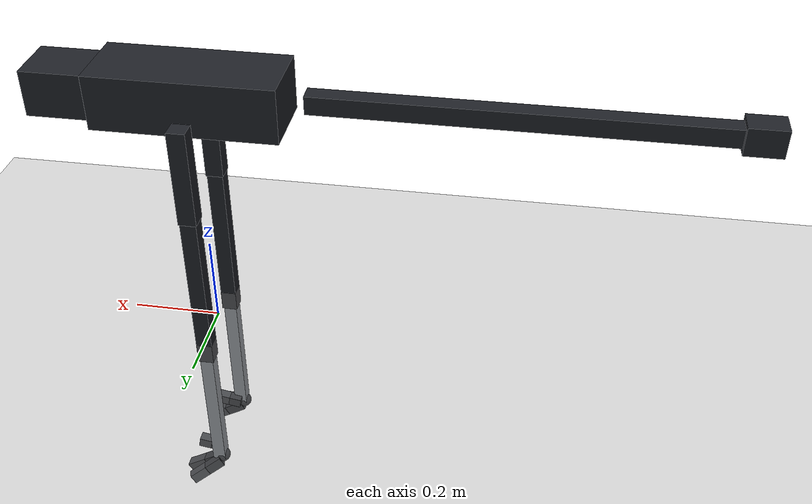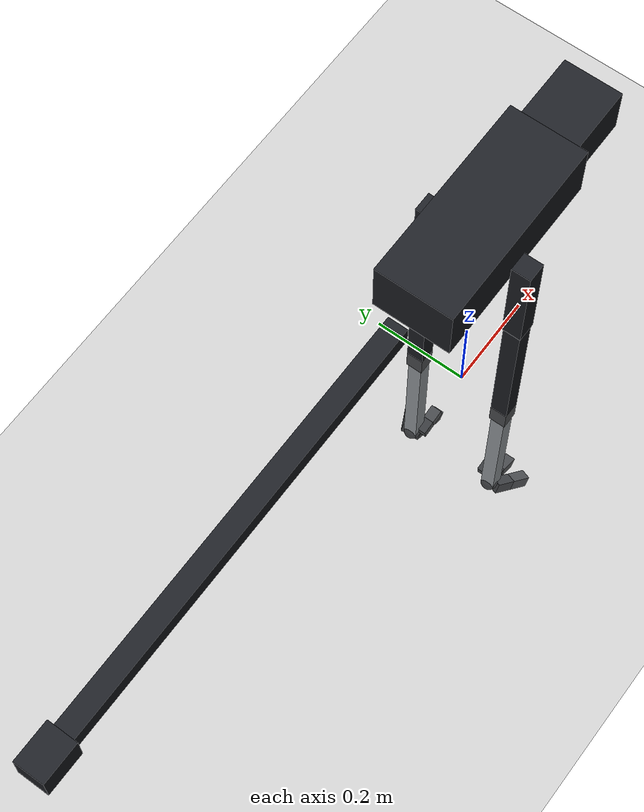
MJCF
<!-- Generated by sim/build_model.py from URDF sha256:26ca1b92b0143d19. Do not edit. -->
<mujoco model="raptor">
  <compiler angle="radian"/>

  <option timestep="0.001" integrator="implicitfast" cone="elliptic"/>

  <worldbody>
    <geom name="floor" size="0 0 0.05" type="plane"/>
    <body name="base_root">
      <joint name="floating_base" type="free"/>
      <body name="base_link" pos="0 0 0.58">
        <inertial pos="0.01635 0 -0.00067" quat="0 0.707107 0 0.707107" mass="4.19" diaginertia="0.0694541 0.0684684 0.0156123"/>
        <geom size="0.2 0.08 0.06" type="box" conaffinity="0" rgba="0.12 0.13 0.15 1"/>
        <geom size="0.07 0.06 0.05" pos="0.27 0 0" type="box" conaffinity="0" rgba="0.12 0.13 0.15 1"/>
        <site name="imu"/>
        <body name="left_hip_roll_link" pos="0 0.1 -0.03">
          <inertial pos="0 0 0" mass="2.26" diaginertia="0.0032544 0.0032544 0.0032544"/>
          <joint name="left_hip_roll_joint" range="-0.5 0.5" actuatorfrcrange="-36 36" axis="1 0 0"/>
          <body name="left_thigh_link">
            <inertial pos="0 0 -0.11" mass="0.282" diaginertia="0.0011656 0.0011656 5.64e-05"/>
            <joint name="left_hip_pitch_joint" range="-1.6 0.9" actuatorfrcrange="-36 36" axis="0 1 0"/>
            <geom size="0.02 0.02 0.11" pos="0 0 -0.11" type="box" conaffinity="0" rgba="0.12 0.13 0.15 1"/>
            <body name="left_shin_link" pos="0 0 -0.22">
              <inertial pos="0 0 -0.19" mass="0.228" diaginertia="0.0027664 0.0027664 4.56e-05"/>
              <joint name="left_knee_pitch_joint" range="0.2 2.6" actuatorfrcrange="-36 36" axis="0 1 0"/>
              <geom size="0.018 0.018 0.19" pos="0 0 -0.19" type="box" conaffinity="0" rgba="0.12 0.13 0.15 1"/>
              <body name="left_metatarsus_link" pos="0 0 -0.38">
                <inertial pos="0 0 -0.16" mass="0.192" diaginertia="0.0016576 0.0016576 3.84e-05"/>
                <joint name="left_ankle_pitch_joint" stiffness="77" range="-2.5 0.2" actuatorfrcrange="-36 36" springref="-1.79828" axis="0 1 0"/>
                <geom size="0.015 0.015 0.16" pos="0 0 -0.16" type="box" conaffinity="0" rgba="0.55 0.58 0.61 1"/>
                <body name="left_foot_link" pos="0 0 -0.32" quat="0.965471 0 0.26051 0">
                  <inertial pos="0 0 0" mass="0.04" diaginertia="2e-05 2e-05 2e-05"/>
                  <joint name="left_ankle_roll_joint" range="-0.5 0.5" actuatorfrcrange="-17 17" armature="0.01" axis="1 0 0"/>
                  <geom size="0.018" pos="-0.005 0 -0.002" conaffinity="0" priority="1" friction="0.8" rgba="0.12 0.13 0.15 1"/>
                  <body name="left_toe_2_proximal_link" pos="0 -0.006 -0.008">
                    <inertial pos="0.025 0 0" quat="0.5 0.5 0.5 0.5" mass="0.01" diaginertia="2.08333e-06 2.08333e-06 5e-07"/>
                    <joint name="left_toe_2_proximal_joint" stiffness="30" range="-0.6 0.9" actuatorfrcrange="-5 5" armature="0.0001" damping="0.05" frictionloss="0.005" axis="0 1 0"/>
                    <geom size="0.025 0.012 0.012" pos="0.025 0 0" type="box" conaffinity="0" priority="1" friction="0.8" rgba="0.12 0.13 0.15 1"/>
                    <body name="left_toe_2_distal_link" pos="0.05 0 0">
                      <inertial pos="0.025 0 0" quat="0.5 0.5 0.5 0.5" mass="0.01" diaginertia="2.08333e-06 2.08333e-06 5e-07"/>
                      <joint name="left_toe_2_distal_joint" stiffness="20" range="-0.6 0.9" actuatorfrcrange="-5 5" armature="0.0001" damping="0.05" frictionloss="0.005" axis="0 1 0"/>
                      <geom size="0.025 0.012 0.012" pos="0.025 0 0" type="box" conaffinity="0" priority="1" friction="1.2" rgba="0.2 0.21 0.23 1"/>
                    </body>
                  </body>
                  <body name="left_toe_1_proximal_link" pos="0 0.012 -0.008" quat="0.978148 0 0 0.207912">
                    <inertial pos="0.02125 0 0" quat="0.5 0.5 0.5 0.5" mass="0.01" diaginertia="1.50521e-06 1.50521e-06 5e-07"/>
                    <joint name="left_toe_1_proximal_joint" stiffness="20" range="-0.6 0.9" actuatorfrcrange="-5 5" armature="0.0001" damping="0.05" frictionloss="0.005" axis="0 1 0"/>
                    <geom size="0.02125 0.012 0.012" pos="0.02125 0 0" type="box" conaffinity="0" priority="1" friction="0.8" rgba="0.12 0.13 0.15 1"/>
                    <body name="left_toe_1_distal_link" pos="0.0425 0 0">
                      <inertial pos="0.02125 0 0" quat="0.5 0.5 0.5 0.5" mass="0.01" diaginertia="1.50521e-06 1.50521e-06 5e-07"/>
                      <joint name="left_toe_1_distal_joint" stiffness="14" range="-0.6 0.9" actuatorfrcrange="-5 5" armature="0.0001" damping="0.05" frictionloss="0.005" axis="0 1 0"/>
                      <geom size="0.02125 0.012 0.012" pos="0.02125 0 0" type="box" conaffinity="0" priority="1" friction="0.8" rgba="0.2 0.21 0.23 1"/>
                    </body>
                  </body>
                  <body name="left_toe_3_proximal_link" pos="-0.01 -0.02 0.01" quat="0.939373 0 -0.342898 0">
                    <inertial pos="0.015 0 0" quat="0.5 0.5 0.5 0.5" mass="0.01" diaginertia="7.5e-07 7.5e-07 5e-07"/>
                    <joint name="left_toe_3_proximal_joint" stiffness="15" range="-0.3 0.3" actuatorfrcrange="-5 5" armature="0.0001" damping="0.05" frictionloss="0.005" axis="0 1 0"/>
                    <geom size="0.015 0.012 0.012" pos="0.015 0 0" type="box" conaffinity="0" priority="1" friction="0.8" rgba="0.12 0.13 0.15 1"/>
                    <body name="left_toe_3_distal_link" pos="0.03 0 0">
                      <inertial pos="0.015 0 0" quat="0.5 0.5 0.5 0.5" mass="0.01" diaginertia="7.5e-07 7.5e-07 5e-07"/>
                      <joint name="left_toe_3_distal_joint" stiffness="10" range="-0.3 0.3" actuatorfrcrange="-5 5" armature="0.0001" damping="0.05" frictionloss="0.005" axis="0 1 0"/>
                      <geom size="0.015 0.012 0.012" pos="0.015 0 0" type="box" conaffinity="0" priority="1" friction="0.8" rgba="0.2 0.21 0.23 1"/>
                    </body>
                  </body>
                </body>
              </body>
            </body>
          </body>
        </body>
        <body name="right_hip_roll_link" pos="0 -0.1 -0.03">
          <inertial pos="0 0 0" mass="2.26" diaginertia="0.0032544 0.0032544 0.0032544"/>
          <joint name="right_hip_roll_joint" range="-0.5 0.5" actuatorfrcrange="-36 36" axis="1 0 0"/>
          <body name="right_thigh_link">
            <inertial pos="0 0 -0.11" mass="0.282" diaginertia="0.0011656 0.0011656 5.64e-05"/>
            <joint name="right_hip_pitch_joint" range="-1.6 0.9" actuatorfrcrange="-36 36" axis="0 1 0"/>
            <geom size="0.02 0.02 0.11" pos="0 0 -0.11" type="box" conaffinity="0" rgba="0.12 0.13 0.15 1"/>
            <body name="right_shin_link" pos="0 0 -0.22">
              <inertial pos="0 0 -0.19" mass="0.228" diaginertia="0.0027664 0.0027664 4.56e-05"/>
              <joint name="right_knee_pitch_joint" range="0.2 2.6" actuatorfrcrange="-36 36" axis="0 1 0"/>
              <geom size="0.018 0.018 0.19" pos="0 0 -0.19" type="box" conaffinity="0" rgba="0.12 0.13 0.15 1"/>
              <body name="right_metatarsus_link" pos="0 0 -0.38">
                <inertial pos="0 0 -0.16" mass="0.192" diaginertia="0.0016576 0.0016576 3.84e-05"/>
                <joint name="right_ankle_pitch_joint" stiffness="77" range="-2.5 0.2" actuatorfrcrange="-36 36" springref="-1.79828" axis="0 1 0"/>
                <geom size="0.015 0.015 0.16" pos="0 0 -0.16" type="box" conaffinity="0" rgba="0.55 0.58 0.61 1"/>
                <body name="right_foot_link" pos="0 0 -0.32" quat="0.965471 0 0.26051 0">
                  <inertial pos="0 0 0" mass="0.04" diaginertia="2e-05 2e-05 2e-05"/>
                  <joint name="right_ankle_roll_joint" range="-0.5 0.5" actuatorfrcrange="-17 17" armature="0.01" axis="1 0 0"/>
                  <geom size="0.018" pos="-0.005 0 -0.002" conaffinity="0" priority="1" friction="0.8" rgba="0.12 0.13 0.15 1"/>
                  <body name="right_toe_2_proximal_link" pos="0 0.006 -0.008">
                    <inertial pos="0.025 0 0" quat="0.5 0.5 0.5 0.5" mass="0.01" diaginertia="2.08333e-06 2.08333e-06 5e-07"/>
                    <joint name="right_toe_2_proximal_joint" stiffness="30" range="-0.6 0.9" actuatorfrcrange="-5 5" armature="0.0001" damping="0.05" frictionloss="0.005" axis="0 1 0"/>
                    <geom size="0.025 0.012 0.012" pos="0.025 0 0" type="box" conaffinity="0" priority="1" friction="0.8" rgba="0.12 0.13 0.15 1"/>
                    <body name="right_toe_2_distal_link" pos="0.05 0 0">
                      <inertial pos="0.025 0 0" quat="0.5 0.5 0.5 0.5" mass="0.01" diaginertia="2.08333e-06 2.08333e-06 5e-07"/>
                      <joint name="right_toe_2_distal_joint" stiffness="20" range="-0.6 0.9" actuatorfrcrange="-5 5" armature="0.0001" damping="0.05" frictionloss="0.005" axis="0 1 0"/>
                      <geom size="0.025 0.012 0.012" pos="0.025 0 0" type="box" conaffinity="0" priority="1" friction="1.2" rgba="0.2 0.21 0.23 1"/>
                    </body>
                  </body>
                  <body name="right_toe_3_proximal_link" pos="0 -0.012 -0.008" quat="0.978148 0 0 -0.207912">
                    <inertial pos="0.02125 0 0" quat="0.5 0.5 0.5 0.5" mass="0.01" diaginertia="1.50521e-06 1.50521e-06 5e-07"/>
                    <joint name="right_toe_3_proximal_joint" stiffness="20" range="-0.6 0.9" actuatorfrcrange="-5 5" armature="0.0001" damping="0.05" frictionloss="0.005" axis="0 1 0"/>
                    <geom size="0.02125 0.012 0.012" pos="0.02125 0 0" type="box" conaffinity="0" priority="1" friction="0.8" rgba="0.12 0.13 0.15 1"/>
                    <body name="right_toe_3_distal_link" pos="0.0425 0 0">
                      <inertial pos="0.02125 0 0" quat="0.5 0.5 0.5 0.5" mass="0.01" diaginertia="1.50521e-06 1.50521e-06 5e-07"/>
                      <joint name="right_toe_3_distal_joint" stiffness="14" range="-0.6 0.9" actuatorfrcrange="-5 5" armature="0.0001" damping="0.05" frictionloss="0.005" axis="0 1 0"/>
                      <geom size="0.02125 0.012 0.012" pos="0.02125 0 0" type="box" conaffinity="0" priority="1" friction="0.8" rgba="0.2 0.21 0.23 1"/>
                    </body>
                  </body>
                  <body name="right_toe_1_proximal_link" pos="-0.01 0.02 0.01" quat="0.939373 0 -0.342898 0">
                    <inertial pos="0.015 0 0" quat="0.5 0.5 0.5 0.5" mass="0.01" diaginertia="7.5e-07 7.5e-07 5e-07"/>
                    <joint name="right_toe_1_proximal_joint" stiffness="15" range="-0.3 0.3" actuatorfrcrange="-5 5" armature="0.0001" damping="0.05" frictionloss="0.005" axis="0 1 0"/>
                    <geom size="0.015 0.012 0.012" pos="0.015 0 0" type="box" conaffinity="0" priority="1" friction="0.8" rgba="0.12 0.13 0.15 1"/>
                    <body name="right_toe_1_distal_link" pos="0.03 0 0">
                      <inertial pos="0.015 0 0" quat="0.5 0.5 0.5 0.5" mass="0.01" diaginertia="7.5e-07 7.5e-07 5e-07"/>
                      <joint name="right_toe_1_distal_joint" stiffness="10" range="-0.3 0.3" actuatorfrcrange="-5 5" armature="0.0001" damping="0.05" frictionloss="0.005" axis="0 1 0"/>
                      <geom size="0.015 0.012 0.012" pos="0.015 0 0" type="box" conaffinity="0" priority="1" friction="0.8" rgba="0.2 0.21 0.23 1"/>
                    </body>
                  </body>
                </body>
              </body>
            </body>
          </body>
        </body>
        <body name="tail_yaw_link" pos="-0.2 0 0">
          <inertial pos="-0.02 0 0" mass="0.4" diaginertia="0.0005 0.0005 0.0005"/>
          <joint name="tail_yaw_joint" range="-0.8 0.8" actuatorfrcrange="-36 36"/>
          <body name="tail_link" pos="-0.04 0 0">
            <inertial pos="-0.72692 0 0" quat="0.5 0.5 0.5 0.5" mass="0.65" diaginertia="0.0482288 0.0482288 0.0003"/>
            <joint name="tail_pitch_joint" range="-0.8 0.8" actuatorfrcrange="-36 36" axis="0 1 0"/>
            <geom size="0.45 0.02 0.02" pos="-0.45 0 0" type="box" conaffinity="0" rgba="0.12 0.13 0.15 1"/>
            <geom size="0.04 0.03 0.03" pos="-0.9 0 0" type="box" conaffinity="0" rgba="0.12 0.13 0.15 1"/>
          </body>
        </body>
      </body>
    </body>
  </worldbody>

  <actuator>
    <general name="left_hip_roll_joint" joint="left_hip_roll_joint" ctrlrange="-3 3" ctrllimited="true" forcelimited="true" forcerange="-36 36" biastype="affine" gainprm="100" biasprm="0 0 -100"/>
    <general name="left_hip_pitch_joint" joint="left_hip_pitch_joint" ctrlrange="-3 3" ctrllimited="true" forcelimited="true" forcerange="-36 36" biastype="affine" gainprm="100" biasprm="0 0 -100"/>
    <general name="left_knee_pitch_joint" joint="left_knee_pitch_joint" ctrlrange="-3 3" ctrllimited="true" forcelimited="true" forcerange="-36 36" biastype="affine" gainprm="100" biasprm="0 0 -100"/>
    <general name="left_ankle_pitch_joint" joint="left_ankle_pitch_joint" ctrlrange="-3 3" ctrllimited="true" forcelimited="true" forcerange="-36 36" biastype="affine" gainprm="100" biasprm="0 0 -100"/>
    <general name="left_ankle_roll_joint" joint="left_ankle_roll_joint" ctrlrange="-3 3" ctrllimited="true" forcelimited="true" forcerange="-17 17" biastype="affine" gainprm="100" biasprm="0 0 -100"/>
    <general name="right_hip_roll_joint" joint="right_hip_roll_joint" ctrlrange="-3 3" ctrllimited="true" forcelimited="true" forcerange="-36 36" biastype="affine" gainprm="100" biasprm="0 0 -100"/>
    <general name="right_hip_pitch_joint" joint="right_hip_pitch_joint" ctrlrange="-3 3" ctrllimited="true" forcelimited="true" forcerange="-36 36" biastype="affine" gainprm="100" biasprm="0 0 -100"/>
    <general name="right_knee_pitch_joint" joint="right_knee_pitch_joint" ctrlrange="-3 3" ctrllimited="true" forcelimited="true" forcerange="-36 36" biastype="affine" gainprm="100" biasprm="0 0 -100"/>
    <general name="right_ankle_pitch_joint" joint="right_ankle_pitch_joint" ctrlrange="-3 3" ctrllimited="true" forcelimited="true" forcerange="-36 36" biastype="affine" gainprm="100" biasprm="0 0 -100"/>
    <general name="right_ankle_roll_joint" joint="right_ankle_roll_joint" ctrlrange="-3 3" ctrllimited="true" forcelimited="true" forcerange="-17 17" biastype="affine" gainprm="100" biasprm="0 0 -100"/>
    <general name="tail_yaw_joint" joint="tail_yaw_joint" ctrlrange="-3 3" ctrllimited="true" forcelimited="true" forcerange="-36 36" biastype="affine" gainprm="100" biasprm="0 0 -100"/>
    <general name="tail_pitch_joint" joint="tail_pitch_joint" ctrlrange="-3 3" ctrllimited="true" forcelimited="true" forcerange="-36 36" biastype="affine" gainprm="100" biasprm="0 0 -100"/>
  </actuator>

  <sensor>
    <framequat objtype="site" objname="imu" name="imu_quat"/>
    <gyro site="imu" name="imu_gyro"/>
  </sensor>
</mujoco>
